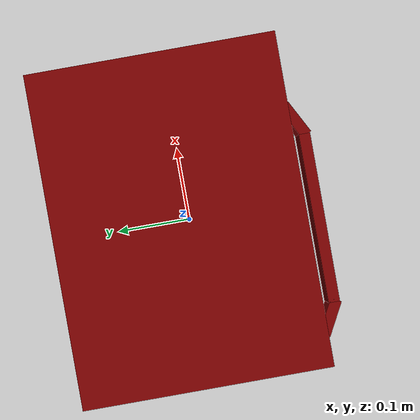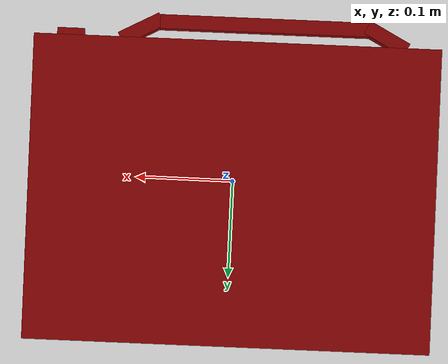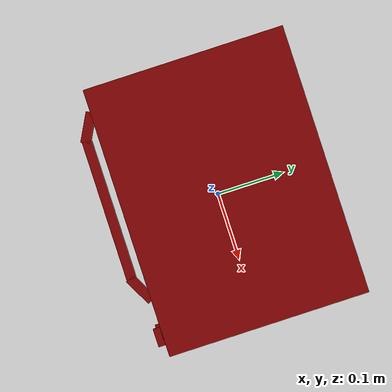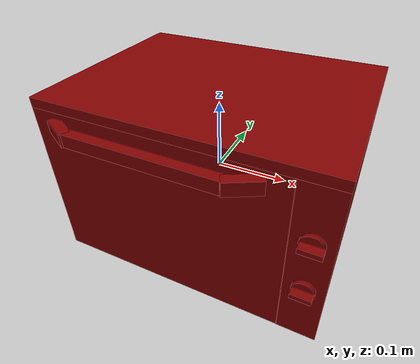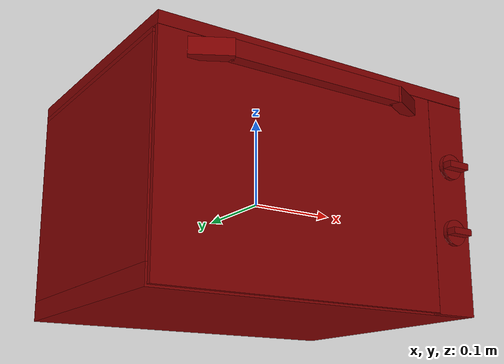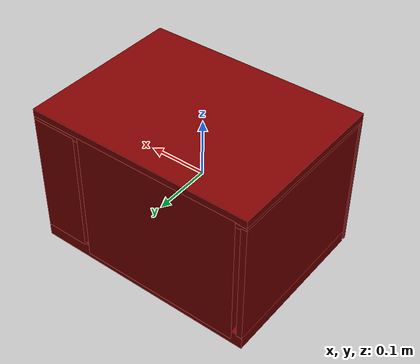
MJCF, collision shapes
<?xml version='1.0' encoding='UTF-8'?>
<mujoco model="model">
  <option timestep="0.002" gravity="0.0 0.0 -9.81"/>
  <compiler angle="radian"/>
  <asset>
    <mesh file="visuals/door.obj" name="door_vis"/>
    <mesh file="visuals/knob_temp.obj" name="knob_temp_vis"/>
    <mesh file="visuals/knob_time.obj" name="knob_time_vis"/>
    <mesh file="visuals/rack0.obj" name="rack0_vis"/>
    <mesh file="visuals/rack1.obj" name="rack1_vis"/>
    <mesh file="visuals/Body001.obj" name="Body001_vis"/>
    <mesh file="visuals/window.obj" name="window_vis"/>
    <texture file="visuals/T_BC001.png" name="Body001_material" type="2d"/>
    <material name="Body001_material" rgba="1 1 1 1.0" texture="Body001_material" shininess="0.1" specular="2"/>
    <texture file="visuals/T_BC001.png" name="door_material" type="2d"/>
    <material name="door_material" rgba="1 1 1 1.0" texture="door_material" shininess="0.1" specular="2"/>
    <texture file="visuals/T_BC001.png" name="window_material" type="2d"/>
    <material name="window_material" rgba="1 1 1 0.7993370890617371" texture="window_material" shininess="0.5" specular="0.3103448502657381"/>
    <texture file="visuals/T_BC001.png" name="knob_temp_material" type="2d"/>
    <material name="knob_temp_material" rgba="1 1 1 1.0" texture="knob_temp_material" shininess="0.5" specular="0.3103448502657381"/>
    <texture file="visuals/T_BC001.png" name="knob_time_material" type="2d"/>
    <material name="knob_time_material" rgba="1 1 1 1.0" texture="knob_time_material" shininess="0.5" specular="0.3103448502657381"/>
    <texture file="visuals/T_BC001.png" name="rack0_material" type="2d"/>
    <material name="rack0_material" rgba="1 1 1 1.0" texture="rack0_material" shininess="0.1" specular="4"/>
    <texture file="visuals/T_BC001.png" name="rack1_material" type="2d"/>
    <material name="rack1_material" rgba="1 1 1 1.0" texture="rack1_material" shininess="0.1" specular="4"/>
  </asset>
  <default>
    <default class="visual">
      <geom conaffinity="0" contype="0" group="1" type="mesh"/>
    </default>
    <default class="collision">
      <geom group="0" rgba="0.5 0 0 0.5"/>
    </default>
    <default class="spawn">
      <geom group="0" rgba="1 1 1 0.5" contype="0" conaffinity="0"/>
      <site group="0" rgba="1 1 1 0.5"/>
    </default>
    <default class="region">
      <geom group="1" conaffinity="0" contype="0" rgba="0 1 0 0"/>
    </default>
  </default>
  <worldbody>
    <body>
      <body name="object">
        <geom mesh="Body001_vis" type="mesh" solimp="0.998 0.998 0.001" solref="0.001 1" friction="0.95 0.3 0.1" class="visual" material="Body001_material"/>
        <geom class="collision" type="box" pos="3.64379957318306e-08 0.012203969061374664 0.11969748884439468" size="0.19304823875427246 0.1445595771074295 0.00679768156260252" quat="1.0 0.0 0.0 0.0"/>
        <geom class="collision" type="box" pos="3.64379957318306e-08 0.017094584181904793 0.11010607331991196" size="0.19304832816123962 0.1396690458059311 0.003947537858039141" quat="1.0 0.0 0.0 0.0"/>
        <geom class="collision" type="box" pos="3.64379957318306e-08 0.017094584181904793 -0.11388709396123886" size="0.1930484026670456 0.13966912031173706 0.012608086690306664" quat="1.0 0.0 0.0 0.0"/>
        <geom class="collision" type="box" pos="-0.18800987303256989 0.017094584181904793 0.002114340662956238" size="0.005040289368480444 0.13966920971870422 0.10683458298444748" quat="1.0 0.0 0.0 0.0"/>
        <geom class="collision" type="box" pos="0.16797146201133728 0.008788986131548882 -0.006917132996022701" size="0.025078538805246353 0.14063630998134613 0.11957735568284988" quat="1.0 0.0 0.0 0.0"/>
        <geom class="collision" type="box" pos="0.15365858376026154 0.017094584181904793 0.002114340662956238" size="0.03939135745167732 0.13966938853263855 0.10683475434780121" quat="1.0 0.0 0.0 0.0"/>
        <geom class="collision" type="box" pos="-0.03421740233898163 0.1468842625617981 -0.0022094398736953735" size="0.14014197885990143 0.009881222620606422 0.11655104905366898" quat="1.0 0.0 0.0 0.0"/>
        <geom class="collision" type="box" pos="0.12259704619646072 0.019221343100070953 0.05575304105877876" size="0.04704725369811058 0.09811290353536606 0.0022972668521106243" quat="1.0 0.0 0.0 0.0"/>
        <geom class="collision" type="box" pos="0.12259704619646072 0.019221343100070953 0.017861761152744293" size="0.04704727604985237 0.09811294078826904 0.001453750184737146" quat="1.0 0.0 0.0 0.0"/>
        <geom class="collision" type="box" pos="0.12259704619646072 0.019221343100070953 -0.019631080329418182" size="0.04704729840159416 0.09811298549175262 0.0022972694132477045" quat="1.0 0.0 0.0 0.0"/>
        <geom class="collision" type="box" pos="0.12259704619646072 0.019221343100070953 -0.05784451588988304" size="0.047047317028045654 0.0981130301952362 0.001453751465305686" quat="1.0 0.0 0.0 0.0"/>
        <geom class="collision" type="box" pos="-0.16787351667881012 0.019221343100070953 -0.05784451588988304" size="0.024093976244330406 0.09811306744813919 0.001453752163797617" quat="1.0 0.0 0.0 0.0"/>
        <geom class="collision" type="box" pos="-0.16787351667881012 0.019221343100070953 -0.019147854298353195" size="0.0240939874202013 0.09811311215162277 0.0022972733713686466" quat="1.0 0.0 0.0 0.0"/>
        <geom class="collision" type="box" pos="-0.16787351667881012 0.019221343100070953 0.01705636829137802" size="0.024093998596072197 0.09811315685510635 0.0014537535607814789" quat="1.0 0.0 0.0 0.0"/>
        <geom class="collision" type="box" pos="-0.16787351667881012 0.019221343100070953 0.05628995969891548" size="0.024094007909297943 0.09811320155858994 0.0022972761653363705" quat="1.0 0.0 0.0 0.0"/>
        <body name="door">
          <joint axis="1.0 0.0 0.0" pos="-0.0246893260627985 -0.12751953303813934 -0.11927250772714615" limited="true" name="door_joint" range="0.0 1.3707963267948966" type="hinge" damping="1" frictionloss="-1" armature=".01" stiffness="0.3" springref="-0.5"/>
          <geom mesh="door_vis" type="mesh" solimp="0.998 0.998 0.001" solref="0.001 1" friction="0.95 0.3 0.1" class="visual" material="door_material"/>
          <geom class="collision" type="box" pos="-0.02538214810192585 -0.12978653609752655 -0.006237654015421867" size="0.167667418718338 0.0025777523405849934 0.118888720870018" quat="1.0 0.0 0.0 0.0" name="door_main"/>
          <geom class="collision" type="box" pos="-0.14305917918682098 -0.1430966705083847 0.09574396908283234" size="0.021940400823950768 0.006711089517921209 0.008941968902945518" quat="0.9704712629318237 0.0 -0.0 -0.2412167340517044"/>
          <geom class="collision" type="box" pos="-0.025079229846596718 -0.1507381647825241 0.09574396908283234" size="0.10060752928256989 0.006711089517921209 0.008941968902945518" quat="1.0 0.0 0.0 0.0" name="door_handle_main"/>
          <geom class="collision" type="box" pos="0.09323767572641373 -0.14281748235225677 0.09574396908283234" size="0.021940400823950768 0.006711089517921209 0.008941968902945518" quat="0.9704712629318237 0.0 0.0 0.2412167191505432"/>
          <body name="window">
            <geom mesh="window_vis" type="mesh" solimp="0.998 0.998 0.001" solref="0.001 1" friction="0.95 0.3 0.1" class="visual" material="window_material"/>
            <geom class="collision" type="box" pos="-0.025531478226184845 -0.12706252932548523 -0.005609186366200447" size="0.13587765395641327 0.003692775731906295 0.0877160057425499" quat="1.0 0.0 0.0 0.0"/>
          </body>
        </body>
        <body name="knob_temp">
          <joint axis="0.0 1.0 0.0" pos="0.16803999245166779 -0.13876289129257202 0.03713800013065338" limited="true" name="knob_temp_joint" range="0.0 5.323254218582705" type="hinge" damping="0.05" armature="1" frictionloss="0.75"/>
          <geom mesh="knob_temp_vis" type="mesh" solimp="0.998 0.998 0.001" solref="0.001 1" friction="0.95 0.3 0.1" class="visual" material="knob_temp_material"/>
          <geom class="collision" type="cylinder" pos="0.1680668294429779 -0.1350042074918747 0.0373394675552845" size="0.014141763560473919 0.0024611155968159437" quat="0.7071067094802856 0.7071068286895752 0.0 0.0" friction="100 0.5 0.01"/>
          <geom class="collision" type="box" pos="0.16884516179561615 -0.14233483374118805 0.03685400262475014" size="0.013529120944440365 0.005517123732715845 0.0035898517817258835" quat="1.0 0.0 0.0 0.0" name="knob_temp_main" friction="100 0.5 0.01"/>
        </body>
        <body name="knob_time">
          <joint axis="0.0 1.0 0.0" pos="0.16803999245166779 -0.13876289129257202 -0.03734299913048744" limited="true" name="knob_time_joint" range="0.0 4.71238898038469" type="hinge" damping="0.05" armature="1" frictionloss="0.75"/>
          <geom mesh="knob_time_vis" type="mesh" solimp="0.998 0.998 0.001" solref="0.001 1" friction="0.95 0.3 0.1" class="visual" material="knob_time_material"/>
          <geom class="collision" type="cylinder" pos="0.1680668294429779 -0.1350042074918747 -0.03711780533194542" size="0.014141763560473919 0.0024611155968159437" quat="0.7071067094802856 0.7071068286895752 0.0 0.0" friction="100 0.5 0.01"/>
          <geom class="collision" type="box" pos="0.16801805794239044 -0.1422434002161026 -0.0375567302107811" size="0.012702028267085552 0.005425702780485153 0.0035221530124545097" quat="1.0 0.0 0.0 0.0" name="knob_time_main" friction="100 0.5 0.01"/>
        </body>
        <body name="rack0">
          <geom class="region" name="reg_rack0" type="box" pos="-0.0343484990298748 0.015304241329431534 -0.016289510764181614" size="0.10898591747879982 0.08787395974993706 0.03529242130368948"/>
          <joint axis="0.0 -1.0 0.0" pos="-0.03493204340338707 0.016905417665839195 -0.04531083256006241" limited="true" name="rack0_joint" range="0.0 0.18" type="slide" damping="1" frictionloss="1" armature=".01" stiffness="0.05"/>
          <geom mesh="rack0_vis" type="mesh" solimp="0.998 0.998 0.001" solref="0.001 1" friction="0.95 0.3 0.1" class="visual" material="rack0_material"/>
          <geom class="collision" type="box" pos="-0.03447645530104637 0.0167081318795681 -0.05289747193455696" size="0.11861972510814667 0.09005417674779892 0.0023155161179602146" quat="1.0 0.0 0.0 0.0"/>
          <geom class="collision" type="box" pos="-0.03447645530104637 0.10486307740211487 -0.043829284608364105" size="0.11861972510814667 0.0018992406548932195 0.007552249822765589" quat="1.0 0.0 0.0 0.0"/>
        </body>
        <body name="rack1">
          <geom class="region" name="reg_rack1" type="box" pos="-0.0343484990298748 0.015304241329431534 0.06537657231092453" size="0.10898591747879982 0.08787395974993706 0.0414285192489624"/>
          <joint axis="0.0 -1.0 0.0" pos="-0.034932058304548264 0.016905417665839195 0.030193159356713295" limited="true" name="rack1_joint" range="0.0 0.18" type="slide" damping="1" frictionloss="1" armature=".01" stiffness="0.05"/>
          <geom mesh="rack1_vis" type="mesh" solimp="0.998 0.998 0.001" solref="0.001 1" friction="0.95 0.3 0.1" class="visual" material="rack1_material"/>
          <geom class="collision" type="box" pos="-0.03447645530104637 0.0167081318795681 0.022632505744695663" size="0.11861972510814667 0.09005417674779892 0.0023155161179602146" quat="1.0 0.0 0.0 0.0"/>
          <geom class="collision" type="box" pos="-0.03447645530104637 0.10486307740211487 0.03170069307088852" size="0.11861972510814667 0.0018992406548932195 0.007552249822765589" quat="1.0 0.0 0.0 0.0"/>
        </body>
        <geom class="region" name="reg_int" type="box" pos="-0.0343484990298748 0.006552781909704208 0.0024947822093963623" size="0.10898591747879982 0.1301065700352192 0.10462600535154343"/>
        <geom class="region" name="reg_main" type="box" pos="1.1175870895385742e-08 0.012200333178043365 0.0" size="0.19404963946342468 0.14556462860107422 0.12749522721767426"/>
      </body>
    </body>
  </worldbody>
  <actuator>
    <motor name="door_joint_actuator" joint="door_joint" gear="50"/>
    <motor name="knob_temp_joint_actuator" joint="knob_temp_joint" gear="50"/>
    <motor name="knob_time_joint_actuator" joint="knob_time_joint" gear="50"/>
    <motor name="rack0_joint_actuator" joint="rack0_joint" gear="50"/>
    <motor name="rack1_joint_actuator" joint="rack1_joint" gear="50"/>
  </actuator>
</mujoco>
